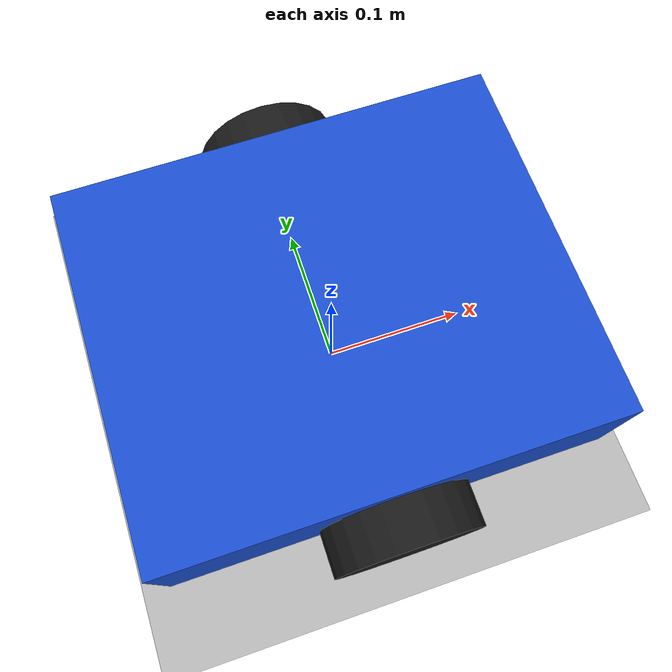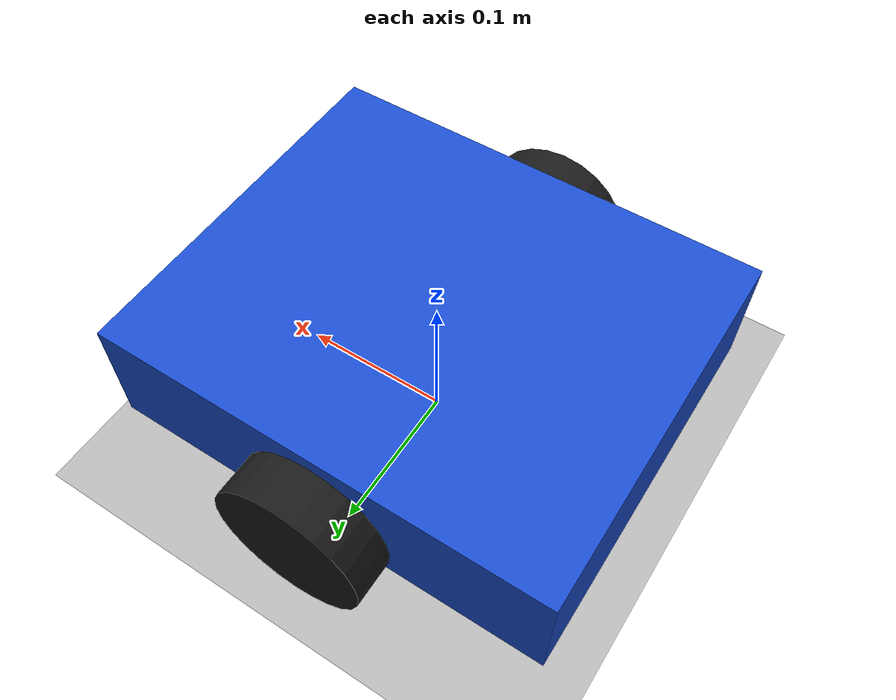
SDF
<?xml version="1.0" ?>
<sdf version="1.8">
  <world name="workshop">

    <physics name="1ms" type="ignored">
      <max_step_size>0.001</max_step_size>
      <real_time_factor>1.0</real_time_factor>
    </physics>

    <plugin filename="ignition-gazebo-physics-system" name="ignition::gazebo::systems::Physics"/>
    <plugin filename="ignition-gazebo-user-commands-system" name="ignition::gazebo::systems::UserCommands"/>
    <plugin filename="ignition-gazebo-scene-broadcaster-system" name="ignition::gazebo::systems::SceneBroadcaster"/>

    <light type="directional" name="sun">
      <cast_shadows>false</cast_shadows>
      <pose>0 0 10 0 0 0</pose>
      <diffuse>0.8 0.8 0.8 1</diffuse>
      <specular>0.2 0.2 0.2 1</specular>
      <direction>-0.5 0.1 -0.9</direction>
    </light>

    <model name="ground_plane">
      <static>true</static>
      <link name="link">
        <collision name="collision">
          <geometry><plane><normal>0 0 1</normal><size>100 100</size></plane></geometry>
        </collision>
        <visual name="visual">
          <geometry><plane><normal>0 0 1</normal><size>20 20</size></plane></geometry>
          <material>
            <ambient>0.7 0.7 0.7 1</ambient>
            <diffuse>0.7 0.7 0.7 1</diffuse>
          </material>
        </visual>
      </link>
    </model>

    <model name="robot">
      <pose>0 0 0 0 0 0</pose>

      <link name="chassis">
        <pose>0 0 0.07 0 0 0</pose>
        <inertial>
          <mass>2.0</mass>
          <inertia>
            <ixx>0.0115</ixx><ixy>0</ixy><ixz>0</ixz>
            <iyy>0.0161</iyy><iyz>0</iyz>
            <izz>0.0254</izz>
          </inertia>
        </inertial>
        <visual name="visual">
          <geometry><box><size>0.30 0.25 0.08</size></box></geometry>
          <material>
            <ambient>0.1 0.3 0.8 1</ambient>
            <diffuse>0.1 0.3 0.8 1</diffuse>
          </material>
        </visual>
        <collision name="collision">
          <geometry><box><size>0.30 0.25 0.08</size></box></geometry>
        </collision>
      </link>

      <link name="left_wheel">
        <pose>0 0.14 0.05 -1.5707 0 0</pose>
        <inertial>
          <mass>0.2</mass>
          <inertia>
            <ixx>0.00014</ixx><ixy>0</ixy><ixz>0</ixz>
            <iyy>0.00014</iyy><iyz>0</iyz>
            <izz>0.00025</izz>
          </inertia>
        </inertial>
        <visual name="visual">
          <geometry><cylinder><radius>0.05</radius><length>0.03</length></cylinder></geometry>
          <material>
            <ambient>0.1 0.1 0.1 1</ambient>
            <diffuse>0.1 0.1 0.1 1</diffuse>
          </material>
        </visual>
        <collision name="collision">
          <geometry><cylinder><radius>0.05</radius><length>0.03</length></cylinder></geometry>
        </collision>
      </link>

      <link name="right_wheel">
        <pose>0 -0.14 0.05 -1.5707 0 0</pose>
        <inertial>
          <mass>0.2</mass>
          <inertia>
            <ixx>0.00014</ixx><ixy>0</ixy><ixz>0</ixz>
            <iyy>0.00014</iyy><iyz>0</iyz>
            <izz>0.00025</izz>
          </inertia>
        </inertial>
        <visual name="visual">
          <geometry><cylinder><radius>0.05</radius><length>0.03</length></cylinder></geometry>
          <material>
            <ambient>0.1 0.1 0.1 1</ambient>
            <diffuse>0.1 0.1 0.1 1</diffuse>
          </material>
        </visual>
        <collision name="collision">
          <geometry><cylinder><radius>0.05</radius><length>0.03</length></cylinder></geometry>
        </collision>
      </link>

      <!-- Frictionless ball in front so the robot doesn't tip -->
      <link name="caster">
        <pose>0.11 0 0.025 0 0 0</pose>
        <inertial>
          <mass>0.1</mass>
          <inertia>
            <ixx>0.000025</ixx><ixy>0</ixy><ixz>0</ixz>
            <iyy>0.000025</iyy><iyz>0</iyz>
            <izz>0.000025</izz>
          </inertia>
        </inertial>
        <visual name="visual">
          <geometry><sphere><radius>0.025</radius></sphere></geometry>
        </visual>
        <collision name="collision">
          <geometry><sphere><radius>0.025</radius></sphere></geometry>
          <surface>
            <friction><ode><mu>0</mu><mu2>0</mu2></ode></friction>
          </surface>
        </collision>
      </link>

      <joint name="left_wheel_joint" type="revolute">
        <parent>chassis</parent>
        <child>left_wheel</child>
        <axis>
          <xyz expressed_in="__model__">0 1 0</xyz>
          <limit><lower>-1.79769e+308</lower><upper>1.79769e+308</upper></limit>
        </axis>
      </joint>

      <joint name="right_wheel_joint" type="revolute">
        <parent>chassis</parent>
        <child>right_wheel</child>
        <axis>
          <xyz expressed_in="__model__">0 1 0</xyz>
          <limit><lower>-1.79769e+308</lower><upper>1.79769e+308</upper></limit>
        </axis>
      </joint>

      <joint name="caster_joint" type="ball">
        <parent>chassis</parent>
        <child>caster</child>
      </joint>

      <plugin filename="ignition-gazebo-diff-drive-system" name="ignition::gazebo::systems::DiffDrive">
        <left_joint>left_wheel_joint</left_joint>
        <right_joint>right_wheel_joint</right_joint>
        <wheel_separation>0.28</wheel_separation>
        <wheel_radius>0.05</wheel_radius>
        <topic>/cmd_vel</topic>
        <odom_topic>/odom</odom_topic>
        <odom_publish_frequency>20</odom_publish_frequency>
        <frame_id>odom</frame_id>
        <child_frame_id>base_link</child_frame_id>
      </plugin>
    </model>

  </world>
</sdf>
